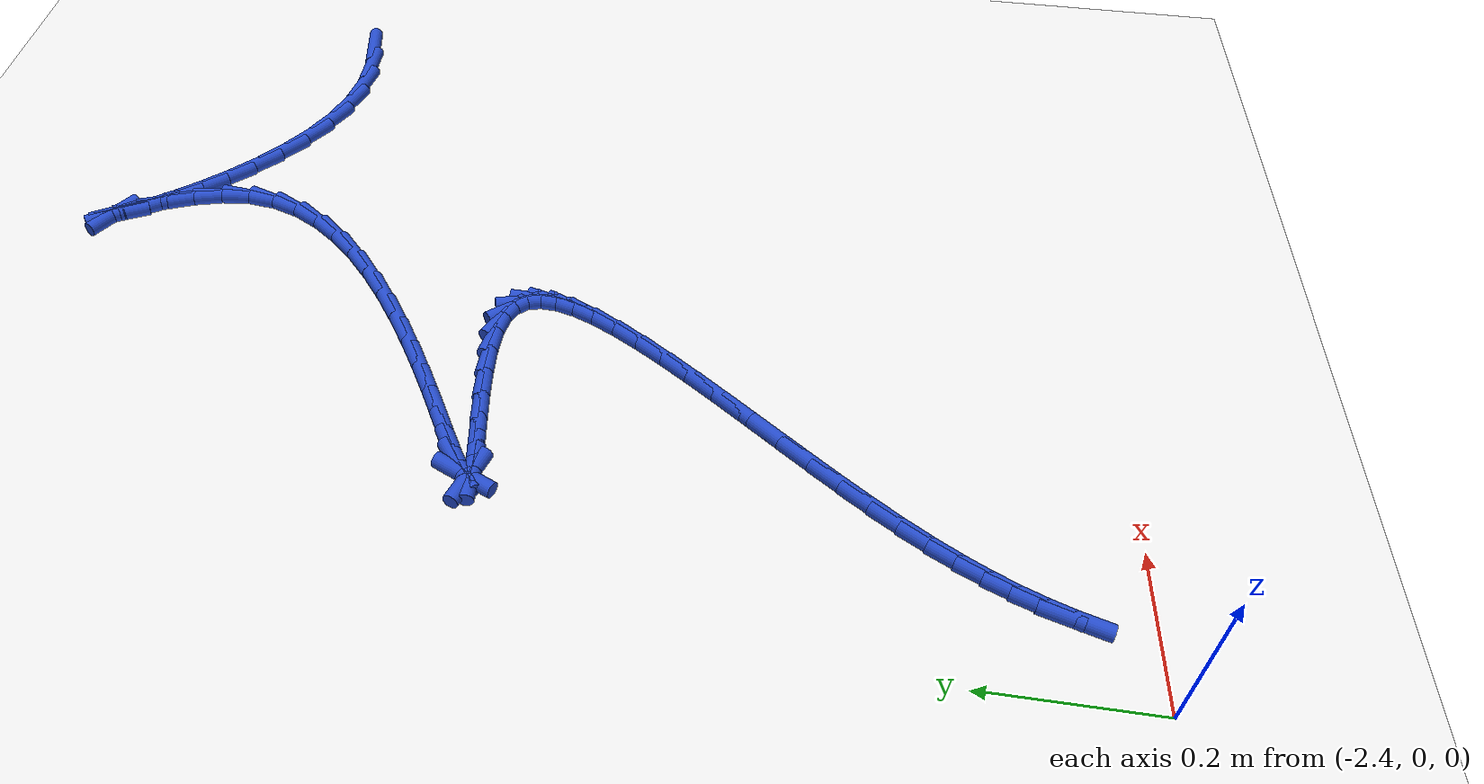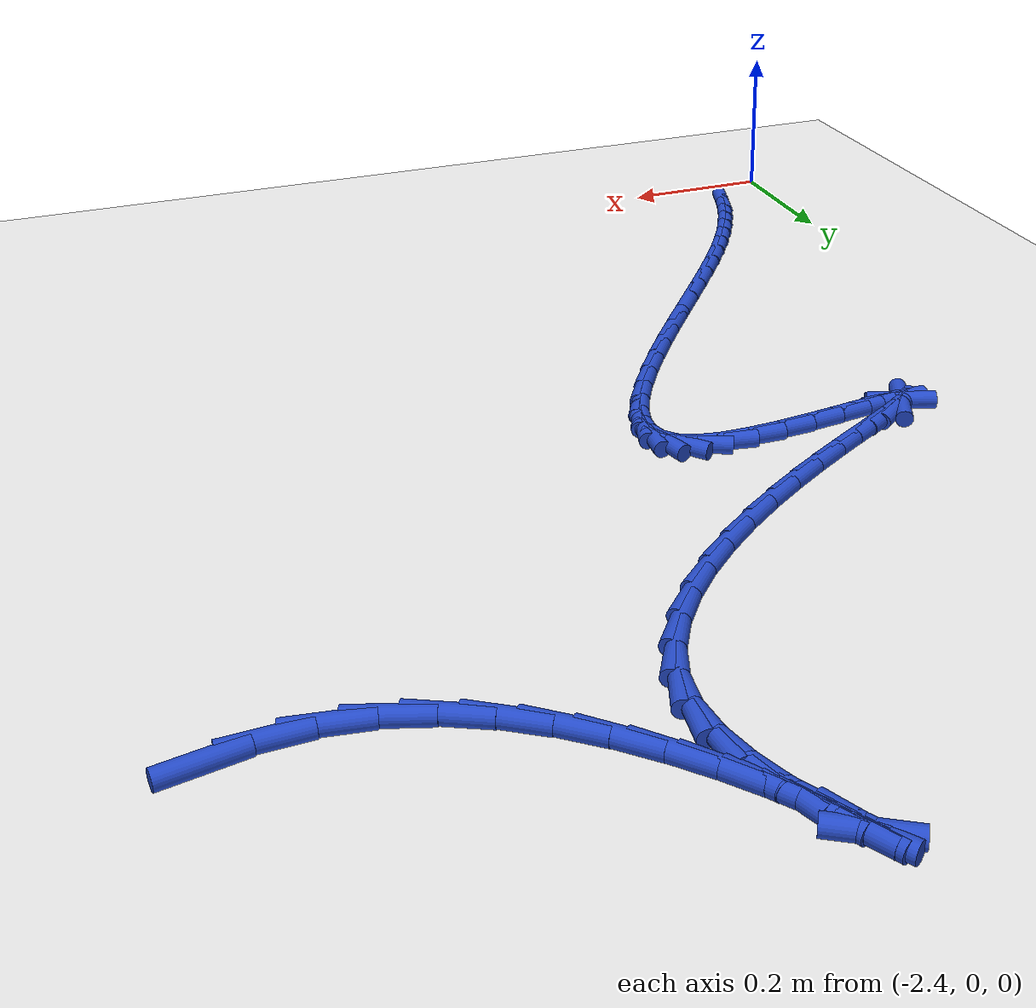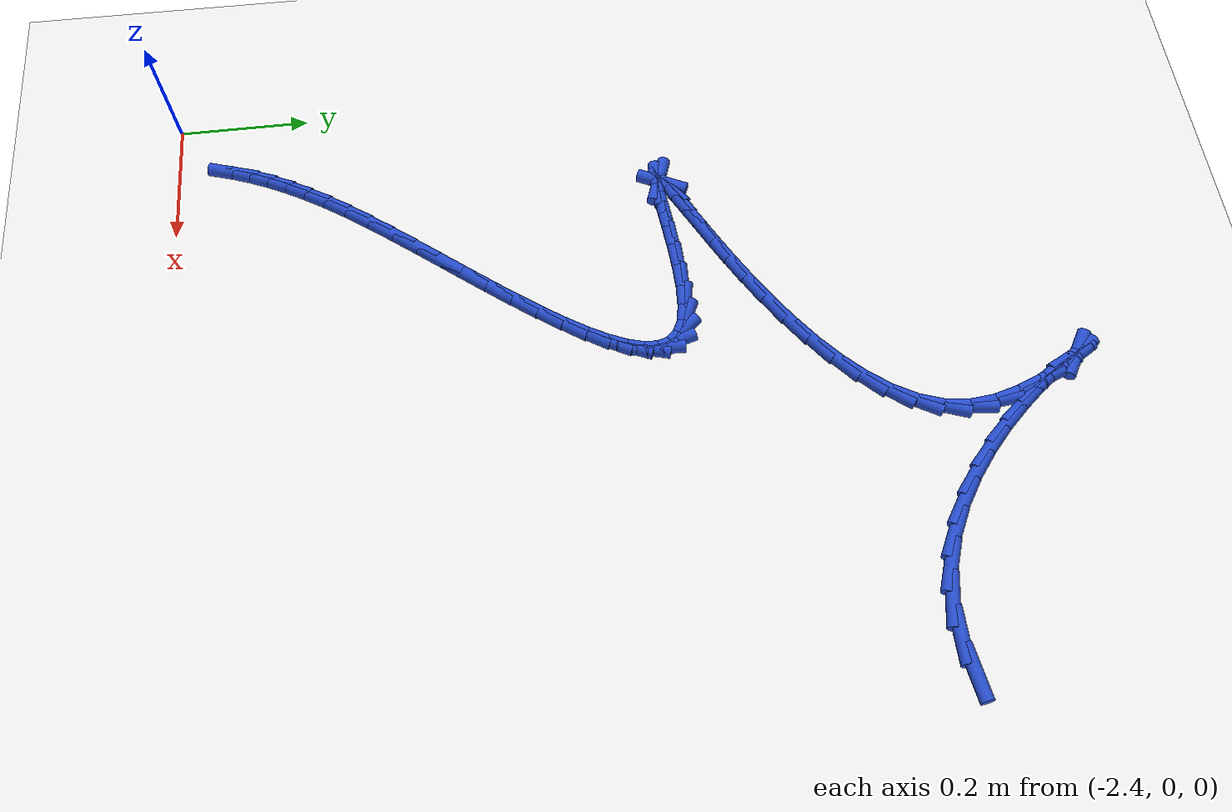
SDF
<sdf version="1.6">
 <world name="default">
  <model name="ground_plane">
   <static>1</static>
   <link name="link">
    <collision name="collision">
     <geometry><plane><normal>0 0 1</normal><size>100 100</size></plane></geometry>
     <surface><friction><ode><mu>100</mu><mu2>50</mu2></ode></friction></surface>
    </collision>
    <visual name="visual">
     <cast_shadows>0</cast_shadows>
     <geometry><plane><normal>0 0 1</normal><size>100 100</size></plane></geometry>
     <material>
      <script><uri>file://media/materials/scripts/gazebo.material</uri><name>Gazebo/WhiteGlow</name></script>
     </material>
    </visual>
   </link>
  </model>
  <model name="line">
   <link name="link_74">
    <pose>-1.3986252990526813 1.0653924230306946 0.01 0 1.57 0.15480041851237744</pose>
    <collision name="collision">
     <geometry><cylinder><radius>0.01</radius><length>0.08</length></cylinder></geometry>
    </collision>
    <visual name="visual">
     <material>
      <script><name>Gazebo/Blue</name><uri>file://media/materials/scripts/gazebo.material</uri></script>
     </material>
     <geometry><cylinder><radius>0.01</radius><length>0.08</length></cylinder></geometry>
    </visual>
   </link>
   <link name="link_75">
    <pose>-1.4489311058684309 1.0575422577314844 0.01 0 1.57 0.0023984486746303924</pose>
    <collision name="collision">
     <geometry><cylinder><radius>0.01</radius><length>0.08</length></cylinder></geometry>
    </collision>
    <visual name="visual">
     <material>
      <script><name>Gazebo/Blue</name><uri>file://media/materials/scripts/gazebo.material</uri></script>
     </material>
     <geometry><cylinder><radius>0.01</radius><length>0.08</length></cylinder></geometry>
    </visual>
   </link>
   <link name="link_76">
    <pose>-1.4984870153752496 1.057423400198096 0.01 0 1.57 -0.1760171826176229</pose>
    <collision name="collision">
     <geometry><cylinder><radius>0.01</radius><length>0.08</length></cylinder></geometry>
    </collision>
    <visual name="visual">
     <material>
      <script><name>Gazebo/Blue</name><uri>file://media/materials/scripts/gazebo.material</uri></script>
     </material>
     <geometry><cylinder><radius>0.01</radius><length>0.08</length></cylinder></geometry>
    </visual>
   </link>
   <link name="link_77">
    <pose>-1.5461587167106285 1.0659021835113636 0.01 0 1.57 -0.33718094685183136</pose>
    <collision name="collision">
     <geometry><cylinder><radius>0.01</radius><length>0.08</length></cylinder></geometry>
    </collision>
    <visual name="visual">
     <material>
      <script><name>Gazebo/Blue</name><uri>file://media/materials/scripts/gazebo.material</uri></script>
     </material>
     <geometry><cylinder><radius>0.01</radius><length>0.08</length></cylinder></geometry>
    </visual>
   </link>
   <link name="link_78">
    <pose>-1.5915085204269683 1.0818003838760284 0.01 0 1.57 -0.472470249937997</pose>
    <collision name="collision">
     <geometry><cylinder><radius>0.01</radius><length>0.08</length></cylinder></geometry>
    </collision>
    <visual name="visual">
     <material>
      <script><name>Gazebo/Blue</name><uri>file://media/materials/scripts/gazebo.material</uri></script>
     </material>
     <geometry><cylinder><radius>0.01</radius><length>0.08</length></cylinder></geometry>
    </visual>
   </link>
   <link name="link_79">
    <pose>-1.6342068304921806 1.1036225275082205 0.01 0 1.57 -0.5840259863826875</pose>
    <collision name="collision">
     <geometry><cylinder><radius>0.01</radius><length>0.08</length></cylinder></geometry>
    </collision>
    <visual name="visual">
     <material>
      <script><name>Gazebo/Blue</name><uri>file://media/materials/scripts/gazebo.material</uri></script>
     </material>
     <geometry><cylinder><radius>0.01</radius><length>0.08</length></cylinder></geometry>
    </visual>
   </link>
   <link name="link_80">
    <pose>-1.6739240508741813 1.1298731406240698 0.01 0 1.57 -0.6757179752037445</pose>
    <collision name="collision">
     <geometry><cylinder><radius>0.01</radius><length>0.08</length></cylinder></geometry>
    </collision>
    <visual name="visual">
     <material>
      <script><name>Gazebo/Blue</name><uri>file://media/materials/scripts/gazebo.material</uri></script>
     </material>
     <geometry><cylinder><radius>0.01</radius><length>0.08</length></cylinder></geometry>
    </visual>
   </link>
   <link name="link_81">
    <pose>-1.7103305855408815 1.1590567494397057 0.01 0 1.57 -0.7515696043111184</pose>
    <collision name="collision">
     <geometry><cylinder><radius>0.01</radius><length>0.08</length></cylinder></geometry>
    </collision>
    <visual name="visual">
     <material>
      <script><name>Gazebo/Blue</name><uri>file://media/materials/scripts/gazebo.material</uri></script>
     </material>
     <geometry><cylinder><radius>0.01</radius><length>0.08</length></cylinder></geometry>
    </visual>
   </link>
   <link name="link_82">
    <pose>-1.7430968384601966 1.1896778801712582 0.01 0 1.57 -0.8151538157205814</pose>
    <collision name="collision">
     <geometry><cylinder><radius>0.01</radius><length>0.08</length></cylinder></geometry>
    </collision>
    <visual name="visual">
     <material>
      <script><name>Gazebo/Blue</name><uri>file://media/materials/scripts/gazebo.material</uri></script>
     </material>
     <geometry><cylinder><radius>0.01</radius><length>0.08</length></cylinder></geometry>
    </visual>
   </link>
   <link name="link_83">
    <pose>-1.7718932136000385 1.2202410590348565 0.01 0 1.57 -0.8695409034052368</pose>
    <collision name="collision">
     <geometry><cylinder><radius>0.01</radius><length>0.08</length></cylinder></geometry>
    </collision>
    <visual name="visual">
     <material>
      <script><name>Gazebo/Blue</name><uri>file://media/materials/scripts/gazebo.material</uri></script>
     </material>
     <geometry><cylinder><radius>0.01</radius><length>0.08</length></cylinder></geometry>
    </visual>
   </link>
   <link name="link_84">
    <pose>-1.7963901149283212 1.2492508122466308 0.01 0 1.57 -0.9175751530644786</pose>
    <collision name="collision">
     <geometry><cylinder><radius>0.01</radius><length>0.08</length></cylinder></geometry>
    </collision>
    <visual name="visual">
     <material>
      <script><name>Gazebo/Blue</name><uri>file://media/materials/scripts/gazebo.material</uri></script>
     </material>
     <geometry><cylinder><radius>0.01</radius><length>0.08</length></cylinder></geometry>
    </visual>
   </link>
   <link name="link_85">
    <pose>-1.8162579464129587 1.2752116660227109 0.01 0 1.57 -0.9626563312229888</pose>
    <collision name="collision">
     <geometry><cylinder><radius>0.01</radius><length>0.08</length></cylinder></geometry>
    </collision>
    <visual name="visual">
     <material>
      <script><name>Gazebo/Blue</name><uri>file://media/materials/scripts/gazebo.material</uri></script>
     </material>
     <geometry><cylinder><radius>0.01</radius><length>0.08</length></cylinder></geometry>
    </visual>
   </link>
   <link name="link_86">
    <pose>-1.8311671120218633 1.2966281465792262 0.01 0 1.57 -1.0117057595699106</pose>
    <collision name="collision">
     <geometry><cylinder><radius>0.01</radius><length>0.08</length></cylinder></geometry>
    </collision>
    <visual name="visual">
     <material>
      <script><name>Gazebo/Blue</name><uri>file://media/materials/scripts/gazebo.material</uri></script>
     </material>
     <geometry><cylinder><radius>0.01</radius><length>0.08</length></cylinder></geometry>
    </visual>
   </link>
   <link name="link_87">
    <pose>-1.8407880157229497 1.3120047801323071 0.01 0 1.57 -1.0987784211513196</pose>
    <collision name="collision">
     <geometry><cylinder><radius>0.01</radius><length>0.08</length></cylinder></geometry>
    </collision>
    <visual name="visual">
     <material>
      <script><name>Gazebo/Blue</name><uri>file://media/materials/scripts/gazebo.material</uri></script>
     </material>
     <geometry><cylinder><radius>0.01</radius><length>0.08</length></cylinder></geometry>
    </visual>
   </link>
   <link name="link_88">
    <pose>-1.8447910614841305 1.3198460928980829 0.01 0 1.57 -0.5490107271996588</pose>
    <collision name="collision">
     <geometry><cylinder><radius>0.01</radius><length>0.08</length></cylinder></geometry>
    </collision>
    <visual name="visual">
     <material>
      <script><name>Gazebo/Blue</name><uri>file://media/materials/scripts/gazebo.material</uri></script>
     </material>
     <geometry><cylinder><radius>0.01</radius><length>0.08</length></cylinder></geometry>
    </visual>
   </link>
   <link name="link_89">
    <pose>-1.8428466532733188 1.3186566110926832 0.01 0 1.57 -0.960029496351458</pose>
    <collision name="collision">
     <geometry><cylinder><radius>0.01</radius><length>0.08</length></cylinder></geometry>
    </collision>
    <visual name="visual">
     <material>
      <script><name>Gazebo/Blue</name><uri>file://media/materials/scripts/gazebo.material</uri></script>
     </material>
     <geometry><cylinder><radius>0.01</radius><length>0.08</length></cylinder></geometry>
    </visual>
   </link>
   <link name="link_90">
    <pose>-1.8347427604420052 1.3070806283145597 0.01 0 1.57 -1.0303280024338604</pose>
    <collision name="collision">
     <geometry><cylinder><radius>0.01</radius><length>0.08</length></cylinder></geometry>
    </collision>
    <visual name="visual">
     <material>
      <script><name>Gazebo/Blue</name><uri>file://media/materials/scripts/gazebo.material</uri></script>
     </material>
     <geometry><cylinder><radius>0.01</radius><length>0.08</length></cylinder></geometry>
    </visual>
   </link>
   <link name="link_91">
    <pose>-1.8219523665093427 1.2857656640457134 0.01 0 1.57 -1.0991671894056059</pose>
    <collision name="collision">
     <geometry><cylinder><radius>0.01</radius><length>0.08</length></cylinder></geometry>
    </collision>
    <visual name="visual">
     <material>
      <script><name>Gazebo/Blue</name><uri>file://media/materials/scripts/gazebo.material</uri></script>
     </material>
     <geometry><cylinder><radius>0.01</radius><length>0.08</length></cylinder></geometry>
    </visual>
   </link>
   <link name="link_92">
    <pose>-1.8072086927356865 1.2568574690062273 0.01 0 1.57 -1.1851376691275053</pose>
    <collision name="collision">
     <geometry><cylinder><radius>0.01</radius><length>0.08</length></cylinder></geometry>
    </collision>
    <visual name="visual">
     <material>
      <script><name>Gazebo/Blue</name><uri>file://media/materials/scripts/gazebo.material</uri></script>
     </material>
     <geometry><cylinder><radius>0.01</radius><length>0.08</length></cylinder></geometry>
    </visual>
   </link>
   <link name="link_93">
    <pose>-1.7932753170888462 1.2225378834300158 0.01 0 1.57 -1.3016011842770585</pose>
    <collision name="collision">
     <geometry><cylinder><radius>0.01</radius><length>0.08</length></cylinder></geometry>
    </collision>
    <visual name="visual">
     <material>
      <script><name>Gazebo/Blue</name><uri>file://media/materials/scripts/gazebo.material</uri></script>
     </material>
     <geometry><cylinder><radius>0.01</radius><length>0.08</length></cylinder></geometry>
    </visual>
   </link>
   <link name="link_94">
    <pose>-1.7829158175366322 1.184988747550994 0.01 0 1.57 -1.4669644971262956</pose>
    <collision name="collision">
     <geometry><cylinder><radius>0.01</radius><length>0.08</length></cylinder></geometry>
    </collision>
    <visual name="visual">
     <material>
      <script><name>Gazebo/Blue</name><uri>file://media/materials/scripts/gazebo.material</uri></script>
     </material>
     <geometry><cylinder><radius>0.01</radius><length>0.08</length></cylinder></geometry>
    </visual>
   </link>
   <link name="link_95">
    <pose>-1.7788937720468534 1.1463919016030755 0.01 0 1.57 1.4511277294793095</pose>
    <collision name="collision">
     <geometry><cylinder><radius>0.01</radius><length>0.08</length></cylinder></geometry>
    </collision>
    <visual name="visual">
     <material>
      <script><name>Gazebo/Blue</name><uri>file://media/materials/scripts/gazebo.material</uri></script>
     </material>
     <geometry><cylinder><radius>0.01</radius><length>0.08</length></cylinder></geometry>
    </visual>
   </link>
   <link name="link_96">
    <pose>-1.7834333903382902 1.10863824109868 0.01 0 1.57 1.2338239638133515</pose>
    <collision name="collision">
     <geometry><cylinder><radius>0.01</radius><length>0.08</length></cylinder></geometry>
    </collision>
    <visual name="visual">
     <material>
      <script><name>Gazebo/Blue</name><uri>file://media/materials/scripts/gazebo.material</uri></script>
     </material>
     <geometry><cylinder><radius>0.01</radius><length>0.08</length></cylinder></geometry>
    </visual>
   </link>
   <link name="link_97">
    <pose>-1.7961878120822181 1.0722317811391808 0.01 0 1.57 1.0543409680663058</pose>
    <collision name="collision">
     <geometry><cylinder><radius>0.01</radius><length>0.08</length></cylinder></geometry>
    </collision>
    <visual name="visual">
     <material>
      <script><name>Gazebo/Blue</name><uri>file://media/materials/scripts/gazebo.material</uri></script>
     </material>
     <geometry><cylinder><radius>0.01</radius><length>0.08</length></cylinder></geometry>
    </visual>
   </link>
   <link name="link_98">
    <pose>-1.8160449239742267 1.0372637459093823 0.01 0 1.57 0.9127438267720819</pose>
    <collision name="collision">
     <geometry><cylinder><radius>0.01</radius><length>0.08</length></cylinder></geometry>
    </collision>
    <visual name="visual">
     <material>
      <script><name>Gazebo/Blue</name><uri>file://media/materials/scripts/gazebo.material</uri></script>
     </material>
     <geometry><cylinder><radius>0.01</radius><length>0.08</length></cylinder></geometry>
    </visual>
   </link>
   <link name="link_99">
    <pose>-1.84189248439959 1.003825290381248 0.01 0 1.57 0.8028554976832766</pose>
    <collision name="collision">
     <geometry><cylinder><radius>0.01</radius><length>0.08</length></cylinder></geometry>
    </collision>
    <visual name="visual">
     <material>
      <script><name>Gazebo/Blue</name><uri>file://media/materials/scripts/gazebo.material</uri></script>
     </material>
     <geometry><cylinder><radius>0.01</radius><length>0.08</length></cylinder></geometry>
    </visual>
   </link>
   <link name="link_100">
    <pose>-1.8726182517435823 0.9720075695267402 0.01 0 1.57 0.717606433671564</pose>
    <collision name="collision">
     <geometry><cylinder><radius>0.01</radius><length>0.08</length></cylinder></geometry>
    </collision>
    <visual name="visual">
     <material>
      <script><name>Gazebo/Blue</name><uri>file://media/materials/scripts/gazebo.material</uri></script>
     </material>
     <geometry><cylinder><radius>0.01</radius><length>0.08</length></cylinder></geometry>
    </visual>
   </link>
   <link name="link_101">
    <pose>-1.9071099843914776 0.941901738317824 0.01 0 1.57 0.6511020414594743</pose>
    <collision name="collision">
     <geometry><cylinder><radius>0.01</radius><length>0.08</length></cylinder></geometry>
    </collision>
    <visual name="visual">
     <material>
      <script><name>Gazebo/Blue</name><uri>file://media/materials/scripts/gazebo.material</uri></script>
     </material>
     <geometry><cylinder><radius>0.01</radius><length>0.08</length></cylinder></geometry>
    </visual>
   </link>
   <link name="link_102">
    <pose>-1.9442554407285502 0.913598951726462 0.01 0 1.57 0.5989679754536841</pose>
    <collision name="collision">
     <geometry><cylinder><radius>0.01</radius><length>0.08</length></cylinder></geometry>
    </collision>
    <visual name="visual">
     <material>
      <script><name>Gazebo/Blue</name><uri>file://media/materials/scripts/gazebo.material</uri></script>
     </material>
     <geometry><cylinder><radius>0.01</radius><length>0.08</length></cylinder></geometry>
    </visual>
   </link>
   <link name="link_103">
    <pose>-1.9829423791400742 0.8871903647246174 0.01 0 1.57 0.5581510064229995</pose>
    <collision name="collision">
     <geometry><cylinder><radius>0.01</radius><length>0.08</length></cylinder></geometry>
    </collision>
    <visual name="visual">
     <material>
      <script><name>Gazebo/Blue</name><uri>file://media/materials/scripts/gazebo.material</uri></script>
     </material>
     <geometry><cylinder><radius>0.01</radius><length>0.08</length></cylinder></geometry>
    </visual>
   </link>
   <link name="link_104">
    <pose>-2.022058558011324 0.8627671322842533 0.01 0 1.57 0.5266632874793342</pose>
    <collision name="collision">
     <geometry><cylinder><radius>0.01</radius><length>0.08</length></cylinder></geometry>
    </collision>
    <visual name="visual">
     <material>
      <script><name>Gazebo/Blue</name><uri>file://media/materials/scripts/gazebo.material</uri></script>
     </material>
     <geometry><cylinder><radius>0.01</radius><length>0.08</length></cylinder></geometry>
    </visual>
   </link>
   <link name="link_105">
    <pose>-2.060491735727574 0.8404204093773344 0.01 0 1.57 0.5034338329178918</pose>
    <collision name="collision">
     <geometry><cylinder><radius>0.01</radius><length>0.08</length></cylinder></geometry>
    </collision>
    <visual name="visual">
     <material>
      <script><name>Gazebo/Blue</name><uri>file://media/materials/scripts/gazebo.material</uri></script>
     </material>
     <geometry><cylinder><radius>0.01</radius><length>0.08</length></cylinder></geometry>
    </visual>
   </link>
   <link name="link_106">
    <pose>-2.097129670674097 0.8202413509758231 0.01 0 1.57 0.48835561696456586</pose>
    <collision name="collision">
     <geometry><cylinder><radius>0.01</radius><length>0.08</length></cylinder></geometry>
    </collision>
    <visual name="visual">
     <material>
      <script><name>Gazebo/Blue</name><uri>file://media/materials/scripts/gazebo.material</uri></script>
     </material>
     <geometry><cylinder><radius>0.01</radius><length>0.08</length></cylinder></geometry>
    </visual>
   </link>
   <link name="link_107">
    <pose>-2.1308601212361684 0.8023211120516827 0.01 0 1.57 0.4827114642234239</pose>
    <collision name="collision">
     <geometry><cylinder><radius>0.01</radius><length>0.08</length></cylinder></geometry>
    </collision>
    <visual name="visual">
     <material>
      <script><name>Gazebo/Blue</name><uri>file://media/materials/scripts/gazebo.material</uri></script>
     </material>
     <geometry><cylinder><radius>0.01</radius><length>0.08</length></cylinder></geometry>
    </visual>
   </link>
   <link name="link_108">
    <pose>-2.160570845799062 0.7867508475768767 0.01 0 1.57 0.49060533303852877</pose>
    <collision name="collision">
     <geometry><cylinder><radius>0.01</radius><length>0.08</length></cylinder></geometry>
    </collision>
    <visual name="visual">
     <material>
      <script><name>Gazebo/Blue</name><uri>file://media/materials/scripts/gazebo.material</uri></script>
     </material>
     <geometry><cylinder><radius>0.01</radius><length>0.08</length></cylinder></geometry>
    </visual>
   </link>
   <link name="link_109">
    <pose>-2.1851496027480533 0.7736217125233689 0.01 0 1.57 0.5240647619510431</pose>
    <collision name="collision">
     <geometry><cylinder><radius>0.01</radius><length>0.08</length></cylinder></geometry>
    </collision>
    <visual name="visual">
     <material>
      <script><name>Gazebo/Blue</name><uri>file://media/materials/scripts/gazebo.material</uri></script>
     </material>
     <geometry><cylinder><radius>0.01</radius><length>0.08</length></cylinder></geometry>
    </visual>
   </link>
   <link name="link_110">
    <pose>-2.2034841504684146 0.7630248618631224 0.01 0 1.57 0.6281609406000626</pose>
    <collision name="collision">
     <geometry><cylinder><radius>0.01</radius><length>0.08</length></cylinder></geometry>
    </collision>
    <visual name="visual">
     <material>
      <script><name>Gazebo/Blue</name><uri>file://media/materials/scripts/gazebo.material</uri></script>
     </material>
     <geometry><cylinder><radius>0.01</radius><length>0.08</length></cylinder></geometry>
    </visual>
   </link>
   <link name="link_111">
    <pose>-2.2144622473454207 0.7550514505681004 0.01 0 1.57 1.1255704774748547</pose>
    <collision name="collision">
     <geometry><cylinder><radius>0.01</radius><length>0.08</length></cylinder></geometry>
    </collision>
    <visual name="visual">
     <material>
      <script><name>Gazebo/Blue</name><uri>file://media/materials/scripts/gazebo.material</uri></script>
     </material>
     <geometry><cylinder><radius>0.01</radius><length>0.08</length></cylinder></geometry>
    </visual>
   </link>
   <link name="link_112">
    <pose>-2.216971651764346 0.7497926336102666 0.01 0 1.57 -0.3339046569982393</pose>
    <collision name="collision">
     <geometry><cylinder><radius>0.01</radius><length>0.08</length></cylinder></geometry>
    </collision>
    <visual name="visual">
     <material>
      <script><name>Gazebo/Blue</name><uri>file://media/materials/scripts/gazebo.material</uri></script>
     </material>
     <geometry><cylinder><radius>0.01</radius><length>0.08</length></cylinder></geometry>
    </visual>
   </link>
   <link name="link_113">
    <pose>-2.2099001221104646 0.7473395659615842 0.01 0 1.57 0.020807152733189983</pose>
    <collision name="collision">
     <geometry><cylinder><radius>0.01</radius><length>0.08</length></cylinder></geometry>
    </collision>
    <visual name="visual">
     <material>
      <script><name>Gazebo/Blue</name><uri>file://media/materials/scripts/gazebo.material</uri></script>
     </material>
     <geometry><cylinder><radius>0.01</radius><length>0.08</length></cylinder></geometry>
    </visual>
   </link>
   <link name="link_114">
    <pose>-2.192403718652086 0.7477036688467512 0.01 0 1.57 0.09492164180117635</pose>
    <collision name="collision">
     <geometry><cylinder><radius>0.01</radius><length>0.08</length></cylinder></geometry>
    </collision>
    <visual name="visual">
     <material>
      <script><name>Gazebo/Blue</name><uri>file://media/materials/scripts/gazebo.material</uri></script>
     </material>
     <geometry><cylinder><radius>0.01</radius><length>0.08</length></cylinder></geometry>
    </visual>
   </link>
   <link name="link_115">
    <pose>-2.1658864568576397 0.7502283178928626 0.01 0 1.57 0.11147164156309718</pose>
    <collision name="collision">
     <geometry><cylinder><radius>0.01</radius><length>0.08</length></cylinder></geometry>
    </collision>
    <visual name="visual">
     <material>
      <script><name>Gazebo/Blue</name><uri>file://media/materials/scripts/gazebo.material</uri></script>
     </material>
     <geometry><cylinder><radius>0.01</radius><length>0.08</length></cylinder></geometry>
    </visual>
   </link>
   <link name="link_116">
    <pose>-2.132873833877767 0.7539236076631596 0.01 0 1.57 0.10438335841818629</pose>
    <collision name="collision">
     <geometry><cylinder><radius>0.01</radius><length>0.08</length></cylinder></geometry>
    </collision>
    <visual name="visual">
     <material>
      <script><name>Gazebo/Blue</name><uri>file://media/materials/scripts/gazebo.material</uri></script>
     </material>
     <geometry><cylinder><radius>0.01</radius><length>0.08</length></cylinder></geometry>
    </visual>
   </link>
   <link name="link_117">
    <pose>-2.0958995937023204 0.7577971819315472 0.01 0 1.57 0.07950223527653984</pose>
    <collision name="collision">
     <geometry><cylinder><radius>0.01</radius><length>0.08</length></cylinder></geometry>
    </collision>
    <visual name="visual">
     <material>
      <script><name>Gazebo/Blue</name><uri>file://media/materials/scripts/gazebo.material</uri></script>
     </material>
     <geometry><cylinder><radius>0.01</radius><length>0.08</length></cylinder></geometry>
    </visual>
   </link>
   <link name="link_118">
    <pose>-2.0574974803211528 0.7608566844719314 0.01 0 1.57 0.03358524400036661</pose>
    <collision name="collision">
     <geometry><cylinder><radius>0.01</radius><length>0.08</length></cylinder></geometry>
    </collision>
    <visual name="visual">
     <material>
      <script><name>Gazebo/Blue</name><uri>file://media/materials/scripts/gazebo.material</uri></script>
     </material>
     <geometry><cylinder><radius>0.01</radius><length>0.08</length></cylinder></geometry>
    </visual>
   </link>
   <link name="link_119">
    <pose>-2.020201237724117 0.7621097590582175 0.01 0 1.57 -0.0458936125816485</pose>
    <collision name="collision">
     <geometry><cylinder><radius>0.01</radius><length>0.08</length></cylinder></geometry>
    </collision>
    <visual name="visual">
     <material>
      <script><name>Gazebo/Blue</name><uri>file://media/materials/scripts/gazebo.material</uri></script>
     </material>
     <geometry><cylinder><radius>0.01</radius><length>0.08</length></cylinder></geometry>
    </visual>
   </link>
   <link name="link_120">
    <pose>-1.9865446099010664 0.7605640494643116 0.01 0 1.57 -0.1917386834557465</pose>
    <collision name="collision">
     <geometry><cylinder><radius>0.01</radius><length>0.08</length></cylinder></geometry>
    </collision>
    <visual name="visual">
     <material>
      <script><name>Gazebo/Blue</name><uri>file://media/materials/scripts/gazebo.material</uri></script>
     </material>
     <geometry><cylinder><radius>0.01</radius><length>0.08</length></cylinder></geometry>
    </visual>
   </link>
   <link name="link_121">
    <pose>-1.9590585949835562 0.7552283698487111 0.01 0 1.57 -0.4613506487907772</pose>
    <collision name="collision">
     <geometry><cylinder><radius>0.01</radius><length>0.08</length></cylinder></geometry>
    </collision>
    <visual name="visual">
     <material>
      <script><name>Gazebo/Blue</name><uri>file://media/materials/scripts/gazebo.material</uri></script>
     </material>
     <geometry><cylinder><radius>0.01</radius><length>0.08</length></cylinder></geometry>
    </visual>
   </link>
   <link name="link_122">
    <pose>-1.939431076346785 0.7454709005180532 0.01 0 1.57 -0.8557443706694169</pose>
    <collision name="collision">
     <geometry><cylinder><radius>0.01</radius><length>0.08</length></cylinder></geometry>
    </collision>
    <visual name="visual">
     <material>
      <script><name>Gazebo/Blue</name><uri>file://media/materials/scripts/gazebo.material</uri></script>
     </material>
     <geometry><cylinder><radius>0.01</radius><length>0.08</length></cylinder></geometry>
    </visual>
   </link>
   <link name="link_123">
    <pose>-1.9273208631229348 0.7315246869583714 0.01 0 1.57 -1.2844668708262865</pose>
    <collision name="collision">
     <geometry><cylinder><radius>0.01</radius><length>0.08</length></cylinder></geometry>
    </collision>
    <visual name="visual">
     <material>
      <script><name>Gazebo/Blue</name><uri>file://media/materials/scripts/gazebo.material</uri></script>
     </material>
     <geometry><cylinder><radius>0.01</radius><length>0.08</length></cylinder></geometry>
    </visual>
   </link>
   <link name="link_124">
    <pose>-1.9220877152345759 0.7137502402963484 0.01 0 1.57 1.5235821518200257</pose>
    <collision name="collision">
     <geometry><cylinder><radius>0.01</radius><length>0.08</length></cylinder></geometry>
    </collision>
    <visual name="visual">
     <material>
      <script><name>Gazebo/Blue</name><uri>file://media/materials/scripts/gazebo.material</uri></script>
     </material>
     <geometry><cylinder><radius>0.01</radius><length>0.08</length></cylinder></geometry>
    </visual>
   </link>
   <link name="link_125">
    <pose>-1.9230913926042819 0.6925080716586693 0.01 0 1.57 1.306092198370264</pose>
    <collision name="collision">
     <geometry><cylinder><radius>0.01</radius><length>0.08</length></cylinder></geometry>
    </collision>
    <visual name="visual">
     <material>
      <script><name>Gazebo/Blue</name><uri>file://media/materials/scripts/gazebo.material</uri></script>
     </material>
     <geometry><cylinder><radius>0.01</radius><length>0.08</length></cylinder></geometry>
    </visual>
   </link>
   <link name="link_126">
    <pose>-1.929691655154624 0.6681586921720168 0.01 0 1.57 1.167651796902386</pose>
    <collision name="collision">
     <geometry><cylinder><radius>0.01</radius><length>0.08</length></cylinder></geometry>
    </collision>
    <visual name="visual">
     <material>
      <script><name>Gazebo/Blue</name><uri>file://media/materials/scripts/gazebo.material</uri></script>
     </material>
     <geometry><cylinder><radius>0.01</radius><length>0.08</length></cylinder></geometry>
    </visual>
   </link>
   <link name="link_127">
    <pose>-1.9412482628081738 0.6410626129630758 0.01 0 1.57 1.0769168735984727</pose>
    <collision name="collision">
     <geometry><cylinder><radius>0.01</radius><length>0.08</length></cylinder></geometry>
    </collision>
    <visual name="visual">
     <material>
      <script><name>Gazebo/Blue</name><uri>file://media/materials/scripts/gazebo.material</uri></script>
     </material>
     <geometry><cylinder><radius>0.01</radius><length>0.08</length></cylinder></geometry>
    </visual>
   </link>
   <link name="link_128">
    <pose>-1.9571209754875036 0.6115803451585294 0.01 0 1.57 1.0154876917400044</pose>
    <collision name="collision">
     <geometry><cylinder><radius>0.01</radius><length>0.08</length></cylinder></geometry>
    </collision>
    <visual name="visual">
     <material>
      <script><name>Gazebo/Blue</name><uri>file://media/materials/scripts/gazebo.material</uri></script>
     </material>
     <geometry><cylinder><radius>0.01</radius><length>0.08</length></cylinder></geometry>
    </visual>
   </link>
   <link name="link_129">
    <pose>-1.9766695531151852 0.5800723998850619 0.01 0 1.57 0.9730738950419127</pose>
    <collision name="collision">
     <geometry><cylinder><radius>0.01</radius><length>0.08</length></cylinder></geometry>
    </collision>
    <visual name="visual">
     <material>
      <script><name>Gazebo/Blue</name><uri>file://media/materials/scripts/gazebo.material</uri></script>
     </material>
     <geometry><cylinder><radius>0.01</radius><length>0.08</length></cylinder></geometry>
    </visual>
   </link>
   <link name="link_130">
    <pose>-1.9992537556137913 0.5468992882693571 0.01 0 1.57 0.9438074786723801</pose>
    <collision name="collision">
     <geometry><cylinder><radius>0.01</radius><length>0.08</length></cylinder></geometry>
    </collision>
    <visual name="visual">
     <material>
      <script><name>Gazebo/Blue</name><uri>file://media/materials/scripts/gazebo.material</uri></script>
     </material>
     <geometry><cylinder><radius>0.01</radius><length>0.08</length></cylinder></geometry>
    </visual>
   </link>
   <link name="link_131">
    <pose>-2.024233342905893 0.5124215214380982 0.01 0 1.57 0.9242613380368078</pose>
    <collision name="collision">
     <geometry><cylinder><radius>0.01</radius><length>0.08</length></cylinder></geometry>
    </collision>
    <visual name="visual">
     <material>
      <script><name>Gazebo/Blue</name><uri>file://media/materials/scripts/gazebo.material</uri></script>
     </material>
     <geometry><cylinder><radius>0.01</radius><length>0.08</length></cylinder></geometry>
    </visual>
   </link>
   <link name="link_132">
    <pose>-2.050968074914063 0.47699961051796996 0.01 0 1.57 0.9124353951706408</pose>
    <collision name="collision">
     <geometry><cylinder><radius>0.01</radius><length>0.08</length></cylinder></geometry>
    </collision>
    <visual name="visual">
     <material>
      <script><name>Gazebo/Blue</name><uri>file://media/materials/scripts/gazebo.material</uri></script>
     </material>
     <geometry><cylinder><radius>0.01</radius><length>0.08</length></cylinder></geometry>
    </visual>
   </link>
   <link name="link_133">
    <pose>-2.0788177115608724 0.4409940666356559 0.01 0 1.57 0.9072393730233118</pose>
    <collision name="collision">
     <geometry><cylinder><radius>0.01</radius><length>0.08</length></cylinder></geometry>
    </collision>
    <visual name="visual">
     <material>
      <script><name>Gazebo/Blue</name><uri>file://media/materials/scripts/gazebo.material</uri></script>
     </material>
     <geometry><cylinder><radius>0.01</radius><length>0.08</length></cylinder></geometry>
    </visual>
   </link>
   <link name="link_134">
    <pose>-2.1071420127688936 0.4047654009178399 0.01 0 1.57 0.9082403271949466</pose>
    <collision name="collision">
     <geometry><cylinder><radius>0.01</radius><length>0.08</length></cylinder></geometry>
    </collision>
    <visual name="visual">
     <material>
      <script><name>Gazebo/Blue</name><uri>file://media/materials/scripts/gazebo.material</uri></script>
     </material>
     <geometry><cylinder><radius>0.01</radius><length>0.08</length></cylinder></geometry>
    </visual>
   </link>
   <link name="link_135">
    <pose>-2.135300738460699 0.3686741244912051 0.01 0 1.57 0.915570557368652</pose>
    <collision name="collision">
     <geometry><cylinder><radius>0.01</radius><length>0.08</length></cylinder></geometry>
    </collision>
    <visual name="visual">
     <material>
      <script><name>Gazebo/Blue</name><uri>file://media/materials/scripts/gazebo.material</uri></script>
     </material>
     <geometry><cylinder><radius>0.01</radius><length>0.08</length></cylinder></geometry>
    </visual>
   </link>
   <link name="link_136">
    <pose>-2.1626536485588597 0.33308074848243663 0.01 0 1.57 0.9299605609091709</pose>
    <collision name="collision">
     <geometry><cylinder><radius>0.01</radius><length>0.08</length></cylinder></geometry>
    </collision>
    <visual name="visual">
     <material>
      <script><name>Gazebo/Blue</name><uri>file://media/materials/scripts/gazebo.material</uri></script>
     </material>
     <geometry><cylinder><radius>0.01</radius><length>0.08</length></cylinder></geometry>
    </visual>
   </link>
   <link name="link_137">
    <pose>-2.1885605029859483 0.29834578401821765 0.01 0 1.57 0.9529111636519422</pose>
    <collision name="collision">
     <geometry><cylinder><radius>0.01</radius><length>0.08</length></cylinder></geometry>
    </collision>
    <visual name="visual">
     <material>
      <script><name>Gazebo/Blue</name><uri>file://media/materials/scripts/gazebo.material</uri></script>
     </material>
     <geometry><cylinder><radius>0.01</radius><length>0.08</length></cylinder></geometry>
    </visual>
   </link>
   <link name="link_138">
    <pose>-2.2123810616645363 0.2648297422252321 0.01 0 1.57 0.9856169748737815</pose>
    <collision name="collision">
     <geometry><cylinder><radius>0.01</radius><length>0.08</length></cylinder></geometry>
    </collision>
    <visual name="visual">
     <material>
      <script><name>Gazebo/Blue</name><uri>file://media/materials/scripts/gazebo.material</uri></script>
     </material>
     <geometry><cylinder><radius>0.01</radius><length>0.08</length></cylinder></geometry>
    </visual>
   </link>
   <link name="link_139">
    <pose>-2.2336048919649625 0.23279842734883235 0.01 0 1.57 1.0243210653497492</pose>
    <collision name="collision">
     <geometry><cylinder><radius>0.01</radius><length>0.08</length></cylinder></geometry>
    </collision>
    <visual name="visual">
     <material>
      <script><name>Gazebo/Blue</name><uri>file://media/materials/scripts/gazebo.material</uri></script>
     </material>
     <geometry><cylinder><radius>0.01</radius><length>0.08</length></cylinder></geometry>
    </visual>
   </link>
   <link name="link_140">
    <pose>-2.252264701163899 0.20212137140545697 0.01 0 1.57 1.0675833176969907</pose>
    <collision name="collision">
     <geometry><cylinder><radius>0.01</radius><length>0.08</length></cylinder></geometry>
    </collision>
    <visual name="visual">
     <material>
      <script><name>Gazebo/Blue</name><uri>file://media/materials/scripts/gazebo.material</uri></script>
     </material>
     <geometry><cylinder><radius>0.01</radius><length>0.08</length></cylinder></geometry>
    </visual>
   </link>
   <link name="link_141">
    <pose>-2.268535231753741 0.17256447821030024 0.01 0 1.57 1.1149756658754313</pose>
    <collision name="collision">
     <geometry><cylinder><radius>0.01</radius><length>0.08</length></cylinder></geometry>
    </collision>
    <visual name="visual">
     <material>
      <script><name>Gazebo/Blue</name><uri>file://media/materials/scripts/gazebo.material</uri></script>
     </material>
     <geometry><cylinder><radius>0.01</radius><length>0.08</length></cylinder></geometry>
    </visual>
   </link>
   <link name="link_142">
    <pose>-2.2825912266857564 0.1438936512437645 0.01 0 1.57 1.165659714703204</pose>
    <collision name="collision">
     <geometry><cylinder><radius>0.01</radius><length>0.08</length></cylinder></geometry>
    </collision>
    <visual name="visual">
     <material>
      <script><name>Gazebo/Blue</name><uri>file://media/materials/scripts/gazebo.material</uri></script>
     </material>
     <geometry><cylinder><radius>0.01</radius><length>0.08</length></cylinder></geometry>
    </visual>
   </link>
   <link name="link_143">
    <pose>-2.29460742891121 0.1158747939862527 0.01 0 1.57 1.2183684991351147</pose>
    <collision name="collision">
     <geometry><cylinder><radius>0.01</radius><length>0.08</length></cylinder></geometry>
    </collision>
    <visual name="visual">
     <material>
      <script><name>Gazebo/Blue</name><uri>file://media/materials/scripts/gazebo.material</uri></script>
     </material>
     <geometry><cylinder><radius>0.01</radius><length>0.08</length></cylinder></geometry>
    </visual>
   </link>
   <link name="link_144">
    <pose>-2.3047585813813707 0.08827380991816777 0.01 0 1.57 1.2714718990011462</pose>
    <collision name="collision">
     <geometry><cylinder><radius>0.01</radius><length>0.08</length></cylinder></geometry>
    </collision>
    <visual name="visual">
     <material>
      <script><name>Gazebo/Blue</name><uri>file://media/materials/scripts/gazebo.material</uri></script>
     </material>
     <geometry><cylinder><radius>0.01</radius><length>0.08</length></cylinder></geometry>
    </visual>
   </link>
  </model>
 </world>
</sdf>
